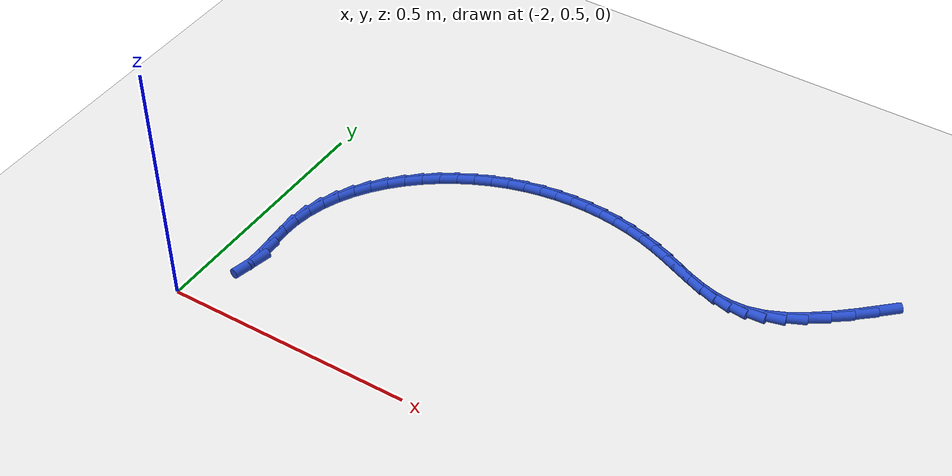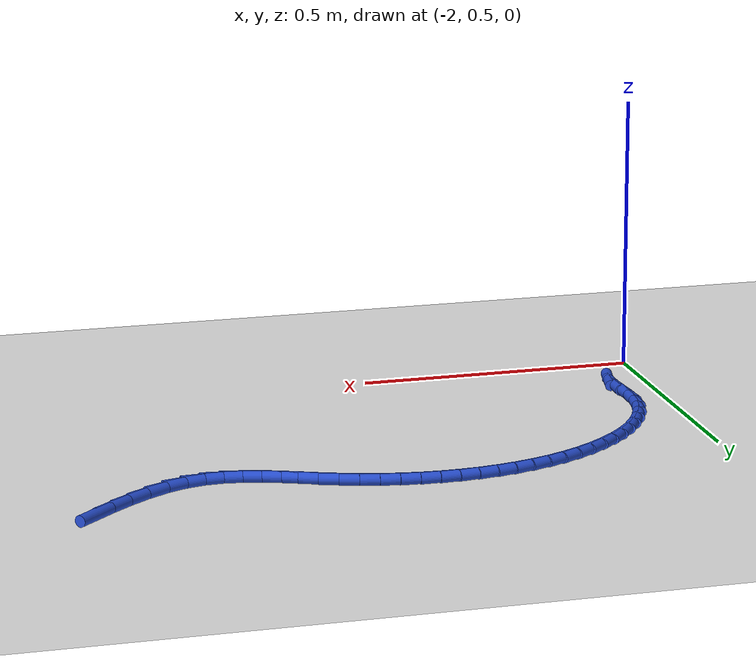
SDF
<sdf version="1.6">
 <world name="default">
  <model name="ground_plane">
   <static>1</static>
   <link name="link">
    <collision name="collision">
     <geometry><plane><normal>0 0 1</normal><size>100 100</size></plane></geometry>
     <surface><friction><ode><mu>100</mu><mu2>50</mu2></ode></friction></surface>
    </collision>
    <visual name="visual">
     <cast_shadows>0</cast_shadows>
     <geometry><plane><normal>0 0 1</normal><size>100 100</size></plane></geometry>
     <material>
      <script><uri>file://media/materials/scripts/gazebo.material</uri><name>Gazebo/WhiteGlow</name></script>
     </material>
    </visual>
   </link>
  </model>
  <model name="line">
   <link name="link_63">
    <pose>-0.8916129206198601 1.1299617367721244 0.01 0 1.57 0.7463581443893547</pose>
    <collision name="collision">
     <geometry><cylinder><radius>0.01</radius><length>0.08</length></cylinder></geometry>
    </collision>
    <visual name="visual">
     <material>
      <script><name>Gazebo/Blue</name><uri>file://media/materials/scripts/gazebo.material</uri></script>
     </material>
     <geometry><cylinder><radius>0.01</radius><length>0.08</length></cylinder></geometry>
    </visual>
   </link>
   <link name="link_64">
    <pose>-0.9240493030089306 1.0999640217998023 0.01 0 1.57 0.7032901428280318</pose>
    <collision name="collision">
     <geometry><cylinder><radius>0.01</radius><length>0.08</length></cylinder></geometry>
    </collision>
    <visual name="visual">
     <material>
      <script><name>Gazebo/Blue</name><uri>file://media/materials/scripts/gazebo.material</uri></script>
     </material>
     <geometry><cylinder><radius>0.01</radius><length>0.08</length></cylinder></geometry>
    </visual>
   </link>
   <link name="link_65">
    <pose>-0.9579636079258416 1.071207120703989 0.01 0 1.57 0.6412048729258841</pose>
    <collision name="collision">
     <geometry><cylinder><radius>0.01</radius><length>0.08</length></cylinder></geometry>
    </collision>
    <visual name="visual">
     <material>
      <script><name>Gazebo/Blue</name><uri>file://media/materials/scripts/gazebo.material</uri></script>
     </material>
     <geometry><cylinder><radius>0.01</radius><length>0.08</length></cylinder></geometry>
    </visual>
   </link>
   <link name="link_66">
    <pose>-0.9927290427660236 1.0452575641579929 0.01 0 1.57 0.55255650376366</pose>
    <collision name="collision">
     <geometry><cylinder><radius>0.01</radius><length>0.08</length></cylinder></geometry>
    </collision>
    <visual name="visual">
     <material>
      <script><name>Gazebo/Blue</name><uri>file://media/materials/scripts/gazebo.material</uri></script>
     </material>
     <geometry><cylinder><radius>0.01</radius><length>0.08</length></cylinder></geometry>
    </visual>
   </link>
   <link name="link_67">
    <pose>-1.0277188149249075 1.0236818828351246 0.01 0 1.57 0.4245592919007156</pose>
    <collision name="collision">
     <geometry><cylinder><radius>0.01</radius><length>0.08</length></cylinder></geometry>
    </collision>
    <visual name="visual">
     <material>
      <script><name>Gazebo/Blue</name><uri>file://media/materials/scripts/gazebo.material</uri></script>
     </material>
     <geometry><cylinder><radius>0.01</radius><length>0.08</length></cylinder></geometry>
    </visual>
   </link>
   <link name="link_68">
    <pose>-1.062306131797924 1.0080466074086933 0.01 0 1.57 0.24484322621479393</pose>
    <collision name="collision">
     <geometry><cylinder><radius>0.01</radius><length>0.08</length></cylinder></geometry>
    </collision>
    <visual name="visual">
     <material>
      <script><name>Gazebo/Blue</name><uri>file://media/materials/scripts/gazebo.material</uri></script>
     </material>
     <geometry><cylinder><radius>0.01</radius><length>0.08</length></cylinder></geometry>
    </visual>
   </link>
   <link name="link_69">
    <pose>-1.0959473746806214 0.9996411375568232 0.01 0 1.57 0.0519977294275255</pose>
    <collision name="collision">
     <geometry><cylinder><radius>0.01</radius><length>0.08</length></cylinder></geometry>
    </collision>
    <visual name="visual">
     <material>
      <script><name>Gazebo/Blue</name><uri>file://media/materials/scripts/gazebo.material</uri></script>
     </material>
     <geometry><cylinder><radius>0.01</radius><length>0.08</length></cylinder></geometry>
    </visual>
   </link>
   <link name="link_70">
    <pose>-1.1286437738846857 0.997939465121097 0.01 0 1.57 -0.11661330106158022</pose>
    <collision name="collision">
     <geometry><cylinder><radius>0.01</radius><length>0.08</length></cylinder></geometry>
    </collision>
    <visual name="visual">
     <material>
      <script><name>Gazebo/Blue</name><uri>file://media/materials/scripts/gazebo.material</uri></script>
     </material>
     <geometry><cylinder><radius>0.01</radius><length>0.08</length></cylinder></geometry>
    </visual>
   </link>
   <link name="link_71">
    <pose>-1.1606158764615333 1.0016848302739179 0.01 0 1.57 -0.24696367830435928</pose>
    <collision name="collision">
     <geometry><cylinder><radius>0.01</radius><length>0.08</length></cylinder></geometry>
    </collision>
    <visual name="visual">
     <material>
      <script><name>Gazebo/Blue</name><uri>file://media/materials/scripts/gazebo.material</uri></script>
     </material>
     <geometry><cylinder><radius>0.01</radius><length>0.08</length></cylinder></geometry>
    </visual>
   </link>
   <link name="link_72">
    <pose>-1.1920848300092128 1.0096184721983743 0.01 0 1.57 -0.33518077162889653</pose>
    <collision name="collision">
     <geometry><cylinder><radius>0.01</radius><length>0.08</length></cylinder></geometry>
    </collision>
    <visual name="visual">
     <material>
      <script><name>Gazebo/Blue</name><uri>file://media/materials/scripts/gazebo.material</uri></script>
     </material>
     <geometry><cylinder><radius>0.01</radius><length>0.08</length></cylinder></geometry>
    </visual>
   </link>
   <link name="link_73">
    <pose>-1.2232717821257721 1.0204816300775554 0.01 0 1.57 -0.38281612621059274</pose>
    <collision name="collision">
     <geometry><cylinder><radius>0.01</radius><length>0.08</length></cylinder></geometry>
    </collision>
    <visual name="visual">
     <material>
      <script><name>Gazebo/Blue</name><uri>file://media/materials/scripts/gazebo.material</uri></script>
     </material>
     <geometry><cylinder><radius>0.01</radius><length>0.08</length></cylinder></geometry>
    </visual>
   </link>
   <link name="link_74">
    <pose>-1.2543978804092595 1.0330155430945498 0.01 0 1.57 -0.39233507034282566</pose>
    <collision name="collision">
     <geometry><cylinder><radius>0.01</radius><length>0.08</length></cylinder></geometry>
    </collision>
    <visual name="visual">
     <material>
      <script><name>Gazebo/Blue</name><uri>file://media/materials/scripts/gazebo.material</uri></script>
     </material>
     <geometry><cylinder><radius>0.01</radius><length>0.08</length></cylinder></geometry>
    </visual>
   </link>
   <link name="link_75">
    <pose>-1.2856842724577227 1.0459614504324461 0.01 0 1.57 -0.3649499966994307</pose>
    <collision name="collision">
     <geometry><cylinder><radius>0.01</radius><length>0.08</length></cylinder></geometry>
    </collision>
    <visual name="visual">
     <material>
      <script><name>Gazebo/Blue</name><uri>file://media/materials/scripts/gazebo.material</uri></script>
     </material>
     <geometry><cylinder><radius>0.01</radius><length>0.08</length></cylinder></geometry>
    </visual>
   </link>
   <link name="link_76">
    <pose>-1.317352100359022 1.0580606113382007 0.01 0 1.57 -0.30756332752768384</pose>
    <collision name="collision">
     <geometry><cylinder><radius>0.01</radius><length>0.08</length></cylinder></geometry>
    </collision>
    <visual name="visual">
     <material>
      <script><name>Gazebo/Blue</name><uri>file://media/materials/scripts/gazebo.material</uri></script>
     </material>
     <geometry><cylinder><radius>0.01</radius><length>0.08</length></cylinder></geometry>
    </visual>
   </link>
   <link name="link_77">
    <pose>-1.3495576414356014 1.0682904726878795 0.01 0 1.57 -0.24477533014462421</pose>
    <collision name="collision">
     <geometry><cylinder><radius>0.01</radius><length>0.08</length></cylinder></geometry>
    </collision>
    <visual name="visual">
     <material>
      <script><name>Gazebo/Blue</name><uri>file://media/materials/scripts/gazebo.material</uri></script>
     </material>
     <geometry><cylinder><radius>0.01</radius><length>0.08</length></cylinder></geometry>
    </visual>
   </link>
   <link name="link_78">
    <pose>-1.382231070870883 1.076451771595444 0.01 0 1.57 -0.18186664257124005</pose>
    <collision name="collision">
     <geometry><cylinder><radius>0.01</radius><length>0.08</length></cylinder></geometry>
    </collision>
    <visual name="visual">
     <material>
      <script><name>Gazebo/Blue</name><uri>file://media/materials/scripts/gazebo.material</uri></script>
     </material>
     <geometry><cylinder><radius>0.01</radius><length>0.08</length></cylinder></geometry>
    </visual>
   </link>
   <link name="link_79">
    <pose>-1.4152533291913747 1.0825245199600408 0.01 0 1.57 -0.11865705077856868</pose>
    <collision name="collision">
     <geometry><cylinder><radius>0.01</radius><length>0.08</length></cylinder></geometry>
    </collision>
    <visual name="visual">
     <material>
      <script><name>Gazebo/Blue</name><uri>file://media/materials/scripts/gazebo.material</uri></script>
     </material>
     <geometry><cylinder><radius>0.01</radius><length>0.08</length></cylinder></geometry>
    </visual>
   </link>
   <link name="link_80">
    <pose>-1.4485053569235857 1.0864887296808179 0.01 0 1.57 -0.05496652863512198</pose>
    <collision name="collision">
     <geometry><cylinder><radius>0.01</radius><length>0.08</length></cylinder></geometry>
    </collision>
    <visual name="visual">
     <material>
      <script><name>Gazebo/Blue</name><uri>file://media/materials/scripts/gazebo.material</uri></script>
     </material>
     <geometry><cylinder><radius>0.01</radius><length>0.08</length></cylinder></geometry>
    </visual>
   </link>
   <link name="link_81">
    <pose>-1.4818680945940261 1.0883244126569231 0.01 0 1.57 0.009378756874677555</pose>
    <collision name="collision">
     <geometry><cylinder><radius>0.01</radius><length>0.08</length></cylinder></geometry>
    </collision>
    <visual name="visual">
     <material>
      <script><name>Gazebo/Blue</name><uri>file://media/materials/scripts/gazebo.material</uri></script>
     </material>
     <geometry><cylinder><radius>0.01</radius><length>0.08</length></cylinder></geometry>
    </visual>
   </link>
   <link name="link_82">
    <pose>-1.5152224827292031 1.0880115807875028 0.01 0 1.57 0.07453995446647195</pose>
    <collision name="collision">
     <geometry><cylinder><radius>0.01</radius><length>0.08</length></cylinder></geometry>
    </collision>
    <visual name="visual">
     <material>
      <script><name>Gazebo/Blue</name><uri>file://media/materials/scripts/gazebo.material</uri></script>
     </material>
     <geometry><cylinder><radius>0.01</radius><length>0.08</length></cylinder></geometry>
    </visual>
   </link>
   <link name="link_83">
    <pose>-1.5484494618556262 1.0855302459717049 0.01 0 1.57 0.14065846401215934</pose>
    <collision name="collision">
     <geometry><cylinder><radius>0.01</radius><length>0.08</length></cylinder></geometry>
    </collision>
    <visual name="visual">
     <material>
      <script><name>Gazebo/Blue</name><uri>file://media/materials/scripts/gazebo.material</uri></script>
     </material>
     <geometry><cylinder><radius>0.01</radius><length>0.08</length></cylinder></geometry>
    </visual>
   </link>
   <link name="link_84">
    <pose>-1.5814299724998044 1.0808604201086773 0.01 0 1.57 0.2078483049123544</pose>
    <collision name="collision">
     <geometry><cylinder><radius>0.01</radius><length>0.08</length></cylinder></geometry>
    </collision>
    <visual name="visual">
     <material>
      <script><name>Gazebo/Blue</name><uri>file://media/materials/scripts/gazebo.material</uri></script>
     </material>
     <geometry><cylinder><radius>0.01</radius><length>0.08</length></cylinder></geometry>
    </visual>
   </link>
   <link name="link_85">
    <pose>-1.614044955188247 1.0739821150975664 0.01 0 1.57 0.27618806551999003</pose>
    <collision name="collision">
     <geometry><cylinder><radius>0.01</radius><length>0.08</length></cylinder></geometry>
    </collision>
    <visual name="visual">
     <material>
      <script><name>Gazebo/Blue</name><uri>file://media/materials/scripts/gazebo.material</uri></script>
     </material>
     <geometry><cylinder><radius>0.01</radius><length>0.08</length></cylinder></geometry>
    </visual>
   </link>
   <link name="link_86">
    <pose>-1.6461753504474614 1.0648753428375204 0.01 0 1.57 0.34571276883280105</pose>
    <collision name="collision">
     <geometry><cylinder><radius>0.01</radius><length>0.08</length></cylinder></geometry>
    </collision>
    <visual name="visual">
     <material>
      <script><name>Gazebo/Blue</name><uri>file://media/materials/scripts/gazebo.material</uri></script>
     </material>
     <geometry><cylinder><radius>0.01</radius><length>0.08</length></cylinder></geometry>
    </visual>
   </link>
   <link name="link_87">
    <pose>-1.6777020988039575 1.0535201152276863 0.01 0 1.57 0.41640620706588133</pose>
    <collision name="collision">
     <geometry><cylinder><radius>0.01</radius><length>0.08</length></cylinder></geometry>
    </collision>
    <visual name="visual">
     <material>
      <script><name>Gazebo/Blue</name><uri>file://media/materials/scripts/gazebo.material</uri></script>
     </material>
     <geometry><cylinder><radius>0.01</radius><length>0.08</length></cylinder></geometry>
    </visual>
   </link>
   <link name="link_88">
    <pose>-1.7085061407842443 1.0398964441672118 0.01 0 1.57 0.48819429082352334</pose>
    <collision name="collision">
     <geometry><cylinder><radius>0.01</radius><length>0.08</length></cylinder></geometry>
    </collision>
    <visual name="visual">
     <material>
      <script><name>Gazebo/Blue</name><uri>file://media/materials/scripts/gazebo.material</uri></script>
     </material>
     <geometry><cylinder><radius>0.01</radius><length>0.08</length></cylinder></geometry>
    </visual>
   </link>
   <link name="link_89">
    <pose>-1.7384683574554138 1.0239843816783458 0.01 0 1.57 0.5608864512516695</pose>
    <collision name="collision">
     <geometry><cylinder><radius>0.01</radius><length>0.08</length></cylinder></geometry>
    </collision>
    <visual name="visual">
     <material>
      <script><name>Gazebo/Blue</name><uri>file://media/materials/scripts/gazebo.material</uri></script>
     </material>
     <geometry><cylinder><radius>0.01</radius><length>0.08</length></cylinder></geometry>
    </visual>
   </link>
   <link name="link_90">
    <pose>-1.7674216931875826 1.0057963273760697 0.01 0 1.57 0.6348490488293982</pose>
    <collision name="collision">
     <geometry><cylinder><radius>0.01</radius><length>0.08</length></cylinder></geometry>
    </collision>
    <visual name="visual">
     <material>
      <script><name>Gazebo/Blue</name><uri>file://media/materials/scripts/gazebo.material</uri></script>
     </material>
     <geometry><cylinder><radius>0.01</radius><length>0.08</length></cylinder></geometry>
    </visual>
   </link>
   <link name="link_91">
    <pose>-1.7950647817313619 0.9854353134281555 0.01 0 1.57 0.7113352935781363</pose>
    <collision name="collision">
     <geometry><cylinder><radius>0.01</radius><length>0.08</length></cylinder></geometry>
    </collision>
    <visual name="visual">
     <material>
      <script><name>Gazebo/Blue</name><uri>file://media/materials/scripts/gazebo.material</uri></script>
     </material>
     <geometry><cylinder><radius>0.01</radius><length>0.08</length></cylinder></geometry>
    </visual>
   </link>
   <link name="link_92">
    <pose>-1.82107291159355 0.9630201253288784 0.01 0 1.57 0.7916402947958397</pose>
    <collision name="collision">
     <geometry><cylinder><radius>0.01</radius><length>0.08</length></cylinder></geometry>
    </collision>
    <visual name="visual">
     <material>
      <script><name>Gazebo/Blue</name><uri>file://media/materials/scripts/gazebo.material</uri></script>
     </material>
     <geometry><cylinder><radius>0.01</radius><length>0.08</length></cylinder></geometry>
    </visual>
   </link>
   <link name="link_93">
    <pose>-1.8451213712809487 0.938669548572515 0.01 0 1.57 0.8770039091591556</pose>
    <collision name="collision">
     <geometry><cylinder><radius>0.01</radius><length>0.08</length></cylinder></geometry>
    </collision>
    <visual name="visual">
     <material>
      <script><name>Gazebo/Blue</name><uri>file://media/materials/scripts/gazebo.material</uri></script>
     </material>
     <geometry><cylinder><radius>0.01</radius><length>0.08</length></cylinder></geometry>
    </visual>
   </link>
   <link name="link_94">
    <pose>-1.8668854493003566 0.9125023686533418 0.01 0 1.57 0.9685626186348947</pose>
    <collision name="collision">
     <geometry><cylinder><radius>0.01</radius><length>0.08</length></cylinder></geometry>
    </collision>
    <visual name="visual">
     <material>
      <script><name>Gazebo/Blue</name><uri>file://media/materials/scripts/gazebo.material</uri></script>
     </material>
     <geometry><cylinder><radius>0.01</radius><length>0.08</length></cylinder></geometry>
    </visual>
   </link>
   <link name="link_95">
    <pose>-1.8860404341585741 0.8846373710656343 0.01 0 1.57 1.0672503046279735</pose>
    <collision name="collision">
     <geometry><cylinder><radius>0.01</radius><length>0.08</length></cylinder></geometry>
    </collision>
    <visual name="visual">
     <material>
      <script><name>Gazebo/Blue</name><uri>file://media/materials/scripts/gazebo.material</uri></script>
     </material>
     <geometry><cylinder><radius>0.01</radius><length>0.08</length></cylinder></geometry>
    </visual>
   </link>
   <link name="link_96">
    <pose>-1.9022616143624018 0.8551933413036685 0.01 0 1.57 1.1736396615496076</pose>
    <collision name="collision">
     <geometry><cylinder><radius>0.01</radius><length>0.08</length></cylinder></geometry>
    </collision>
    <visual name="visual">
     <material>
      <script><name>Gazebo/Blue</name><uri>file://media/materials/scripts/gazebo.material</uri></script>
     </material>
     <geometry><cylinder><radius>0.01</radius><length>0.08</length></cylinder></geometry>
    </visual>
   </link>
   <link name="link_97">
    <pose>-1.9152242784186384 0.8242890648617214 0.01 0 1.57 1.2877331884240175</pose>
    <collision name="collision">
     <geometry><cylinder><radius>0.01</radius><length>0.08</length></cylinder></geometry>
    </collision>
    <visual name="visual">
     <material>
      <script><name>Gazebo/Blue</name><uri>file://media/materials/scripts/gazebo.material</uri></script>
     </material>
     <geometry><cylinder><radius>0.01</radius><length>0.08</length></cylinder></geometry>
    </visual>
   </link>
   <link name="link_98">
    <pose>-1.924603714834085 0.7920433272340685 0.01 0 1.57 1.4087474237329882</pose>
    <collision name="collision">
     <geometry><cylinder><radius>0.01</radius><length>0.08</length></cylinder></geometry>
    </collision>
    <visual name="visual">
     <material>
      <script><name>Gazebo/Blue</name><uri>file://media/materials/scripts/gazebo.material</uri></script>
     </material>
     <geometry><cylinder><radius>0.01</radius><length>0.08</length></cylinder></geometry>
    </visual>
   </link>
   <link name="link_99">
    <pose>-1.9300752121155407 0.7585749139149855 0.01 0 1.57 1.5342344413658562</pose>
    <collision name="collision">
     <geometry><cylinder><radius>0.01</radius><length>0.08</length></cylinder></geometry>
    </collision>
    <visual name="visual">
     <material>
      <script><name>Gazebo/Blue</name><uri>file://media/materials/scripts/gazebo.material</uri></script>
     </material>
     <geometry><cylinder><radius>0.01</radius><length>0.08</length></cylinder></geometry>
    </visual>
   </link>
   <link name="link_100">
    <pose>-1.9313394457848267 0.7240124105388743 0.01 0 1.57 -1.5154577967770166</pose>
    <collision name="collision">
     <geometry><cylinder><radius>0.01</radius><length>0.08</length></cylinder></geometry>
    </collision>
    <visual name="visual">
     <material>
      <script><name>Gazebo/Blue</name><uri>file://media/materials/scripts/gazebo.material</uri></script>
     </material>
     <geometry><cylinder><radius>0.01</radius><length>0.08</length></cylinder></geometry>
    </visual>
   </link>
   <link name="link_101">
    <pose>-1.929399213434185 0.6889870604468502 0.01 0 1.57 -1.5052048719661393</pose>
    <collision name="collision">
     <geometry><cylinder><radius>0.01</radius><length>0.08</length></cylinder></geometry>
    </collision>
    <visual name="visual">
     <material>
      <script><name>Gazebo/Blue</name><uri>file://media/materials/scripts/gazebo.material</uri></script>
     </material>
     <geometry><cylinder><radius>0.01</radius><length>0.08</length></cylinder></geometry>
    </visual>
   </link>
   <link name="link_102">
    <pose>-1.9271578006817254 0.6548637516777237 0.01 0 1.57 1.554723196713971</pose>
    <collision name="collision">
     <geometry><cylinder><radius>0.01</radius><length>0.08</length></cylinder></geometry>
    </collision>
    <visual name="visual">
     <material>
      <script><name>Gazebo/Blue</name><uri>file://media/materials/scripts/gazebo.material</uri></script>
     </material>
     <geometry><cylinder><radius>0.01</radius><length>0.08</length></cylinder></geometry>
    </visual>
   </link>
   <link name="link_103">
    <pose>-1.9276689429332294 0.6230654503468284 0.01 0 1.57 1.3492751672746872</pose>
    <collision name="collision">
     <geometry><cylinder><radius>0.01</radius><length>0.08</length></cylinder></geometry>
    </collision>
    <visual name="visual">
     <material>
      <script><name>Gazebo/Blue</name><uri>file://media/materials/scripts/gazebo.material</uri></script>
     </material>
     <geometry><cylinder><radius>0.01</radius><length>0.08</length></cylinder></geometry>
    </visual>
   </link>
  </model>
 </world>
</sdf>
